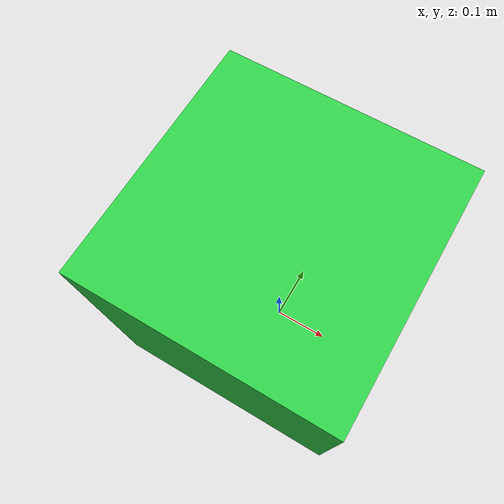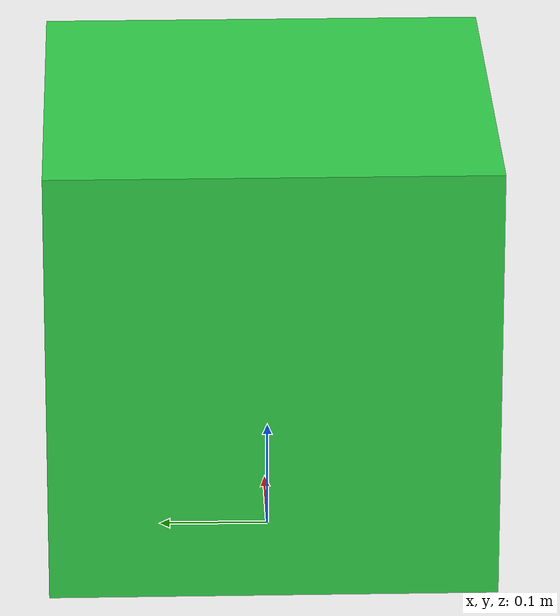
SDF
<?xml version="1.0"?>
<sdf version="1.9">
  <model name="medium_box">
    <static>true</static>
    <link name="body">
      <!-- Lift the origin to the box base: pose = half-height up -->
      <pose>0 0 0.225 0 0 0</pose>
      <collision name="collision">
        <geometry>
          <box>
            <size>0.4025 0.4025 0.4025</size>
          </box>
        </geometry>
      </collision>
      <visual name="visual">
        <geometry>
          <box>
            <size>0.4025 0.4025 0.4025</size>
          </box>
        </geometry>
        <material>
          <diffuse>0.2 0.85 0.3 1.0</diffuse>
          <ambient>0.15 0.65 0.25 1.0</ambient>
        </material>
      </visual>
    </link>
  </model>
</sdf>
